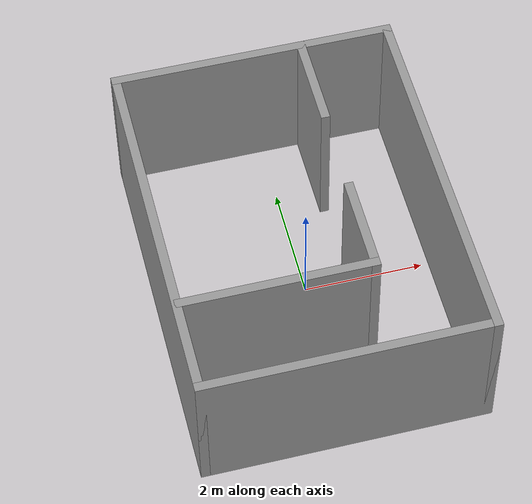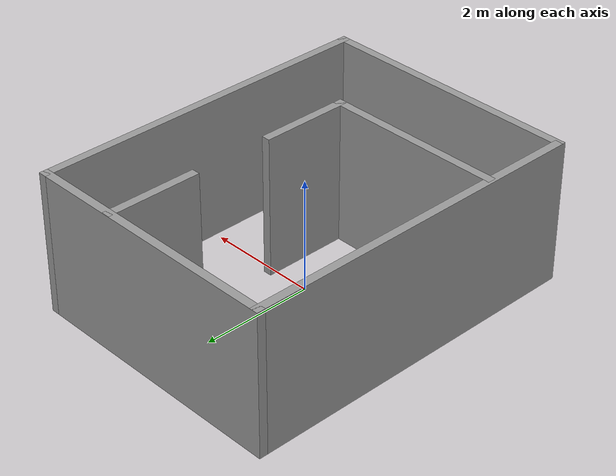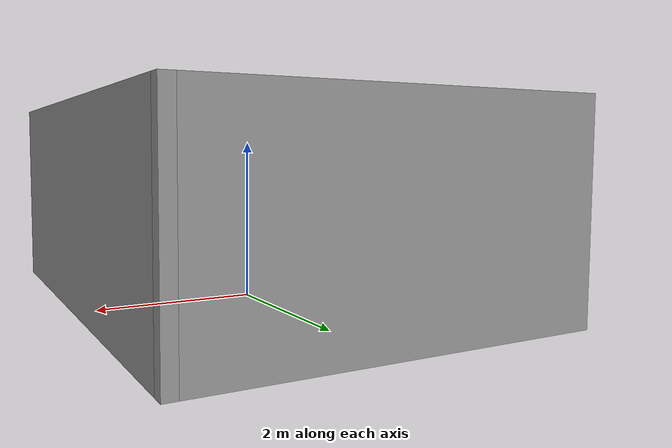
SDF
<?xml version='1.0'?>
<sdf version='1.6'>
  <model name='Walls'>
    <pose frame=''>-0.100367 0.070504 0 0 -0 0</pose>
    <link name='Wall_0'>
      <collision name='Wall_0_Collision'>
        <geometry>
          <box>
            <size>6.25 0.15 2.5</size>
          </box>
        </geometry>
        <pose frame=''>0 0 1.25 0 -0 0</pose>
      </collision>
      <visual name='Wall_0_Visual'>
        <pose frame=''>0 0 1.25 0 -0 0</pose>
        <geometry>
          <box>
            <size>6.25 0.15 2.5</size>
          </box>
        </geometry>
        <material>
          <script>
            <uri>file://media/materials/scripts/gazebo.material</uri>
            <name>Gazebo/Grey</name>
          </script>
          <ambient>1 1 1 1</ambient>
        </material>
      </visual>
      <pose frame=''>-2.3 0 0 0 0 -1.5708</pose>
    </link>
    <link name='Wall_1'>
      <collision name='Wall_1_Collision'>
        <geometry>
          <box>
            <size>4.75 0.15 2.5</size>
          </box>
        </geometry>
        <pose frame=''>0 0 1.25 0 -0 0</pose>
      </collision>
      <visual name='Wall_1_Visual'>
        <pose frame=''>0 0 1.25 0 -0 0</pose>
        <geometry>
          <box>
            <size>4.75 0.15 2.5</size>
          </box>
        </geometry>
        <material>
          <script>
            <uri>file://media/materials/scripts/gazebo.material</uri>
            <name>Gazebo/Grey</name>
          </script>
          <ambient>1 1 1 1</ambient>
        </material>
      </visual>
      <pose frame=''>0 -3.05 0 0 -0 0</pose>
    </link>
    <link name='Wall_10'>
      <collision name='Wall_10_Collision'>
        <geometry>
          <box>
            <size>1.65852 0.15 2.5</size>
          </box>
        </geometry>
        <pose frame=''>0 0 1.25 0 -0 0</pose>
      </collision>
      <visual name='Wall_10_Visual'>
        <pose frame=''>0 0 1.25 0 -0 0</pose>
        <geometry>
          <box>
            <size>1.65852 0.15 2.5</size>
          </box>
        </geometry>
        <material>
          <script>
            <uri>file://media/materials/scripts/gazebo.material</uri>
            <name>Gazebo/Grey</name>
          </script>
          <ambient>1 1 1 1</ambient>
        </material>
      </visual>
      <pose frame=''>0.822834 -0.768363 0 0 -0 1.5708</pose>
    </link>
    <link name='Wall_3'>
      <collision name='Wall_3_Collision'>
        <geometry>
          <box>
            <size>6.25 0.15 2.5</size>
          </box>
        </geometry>
        <pose frame=''>0 0 1.25 0 -0 0</pose>
      </collision>
      <visual name='Wall_3_Visual'>
        <pose frame=''>0 0 1.25 0 -0 0</pose>
        <geometry>
          <box>
            <size>6.25 0.15 2.5</size>
          </box>
        </geometry>
        <material>
          <script>
            <uri>file://media/materials/scripts/gazebo.material</uri>
            <name>Gazebo/Grey</name>
          </script>
          <ambient>1 1 1 1</ambient>
        </material>
      </visual>
      <pose frame=''>2.3 0 0 0 -0 1.5708</pose>
    </link>
    <link name='Wall_4'>
      <collision name='Wall_4_Collision'>
        <geometry>
          <box>
            <size>4.75 0.15 2.5</size>
          </box>
        </geometry>
        <pose frame=''>0 0 1.25 0 -0 0</pose>
      </collision>
      <visual name='Wall_4_Visual'>
        <pose frame=''>0 0 1.25 0 -0 0</pose>
        <geometry>
          <box>
            <size>4.75 0.15 2.5</size>
          </box>
        </geometry>
        <material>
          <script>
            <uri>file://media/materials/scripts/gazebo.material</uri>
            <name>Gazebo/Grey</name>
          </script>
          <ambient>1 1 1 1</ambient>
        </material>
      </visual>
      <pose frame=''>0 3.05 0 0 -0 3.14159</pose>
    </link>
    <link name='Wall_6'>
      <collision name='Wall_6_Collision'>
        <geometry>
          <box>
            <size>1.67916 0.15 2.5</size>
          </box>
        </geometry>
        <pose frame=''>0 0 1.25 0 -0 0</pose>
      </collision>
      <visual name='Wall_6_Visual'>
        <pose frame=''>0 0 1.25 0 -0 0</pose>
        <geometry>
          <box>
            <size>1.67916 0.15 2.5</size>
          </box>
        </geometry>
        <material>
          <script>
            <uri>file://media/materials/scripts/gazebo.material</uri>
            <name>Gazebo/Grey</name>
          </script>
          <ambient>1 1 1 1</ambient>
        </material>
      </visual>
      <pose frame=''>0.822834 2.27884 0 0 0 -1.5708</pose>
    </link>
    <link name='Wall_9'>
      <collision name='Wall_9_Collision'>
        <geometry>
          <box>
            <size>3.22738 0.15 2.5</size>
          </box>
        </geometry>
        <pose frame=''>0 0 1.25 0 -0 0</pose>
      </collision>
      <visual name='Wall_9_Visual'>
        <pose frame=''>0 0 1.25 0 -0 0</pose>
        <geometry>
          <box>
            <size>3.22738 0.15 2.5</size>
          </box>
        </geometry>
        <material>
          <script>
            <uri>file://media/materials/scripts/gazebo.material</uri>
            <name>Gazebo/Grey</name>
          </script>
          <ambient>1 1 1 1</ambient>
        </material>
      </visual>
      <pose frame=''>-0.715855 -1.52262 0 0 -0 0</pose>
    </link>
    <static>1</static>
  </model>
</sdf>
